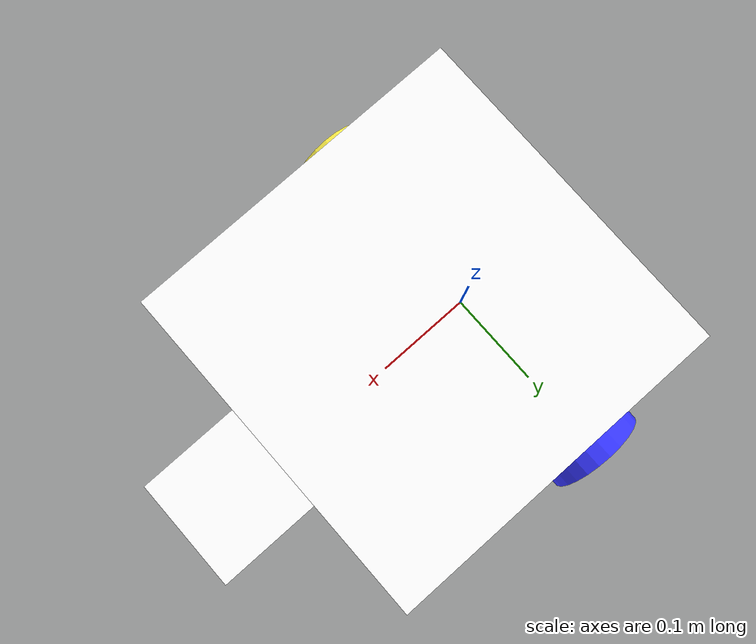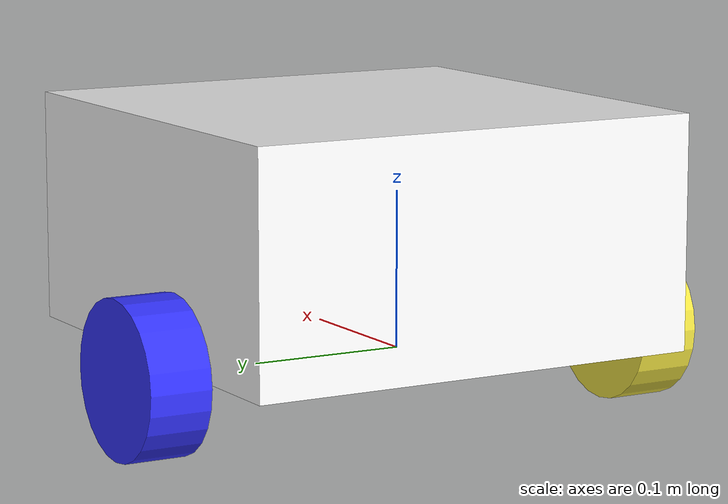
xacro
<?xml version="1.0"?>
<robot name="my_bot" xmlns:xacro="http://www.ros.org/wiki/xacro">

    <xacro:include filename="inertial_macros.xacro"/>

    <material name="white">
        <color rgba="1 1 1 1" />
    </material>

    <material name="orange">
        <color rgba="1 0.3 0.1 1"/>
    </material>

    <material name="blue">
        <color rgba="0.2 0.2 1 1"/>
    </material>

    <material name="black">
        <color rgba="0 0 0 1"/>
    </material>

    <!-- BASE LINK -->

    <link name="base_link">

    </link>

    <!-- CHASSIS LINK -->

    <joint name="chassis_joint" type="fixed">
        <parent link="base_link"/>
        <child link="chassis"/>
        <origin xyz="-0.1 0 0"/>
    </joint>

    <link name="chassis">
        <visual>
            <origin xyz="0.15 0 0.075"/>
            <geometry>
                <box size="0.3 0.3 0.15"/>
            </geometry>
            <material name="white"/>
        </visual>
        <collision>
            <origin xyz="0.15 0 0.075"/>
            <geometry>
                <box size="0.3 0.3 0.15"/>
            </geometry>
        </collision>
        <xacro:inertial_box mass="0.5" x="0.3" y="0.3" z="0.15">
            <origin xyz="0.15 0 0.075" rpy="0 0 0"/>
        </xacro:inertial_box>
    </link>

    <gazebo reference="chassis">
        <visual>
            <material>
                <!-- Values between 0.0 and 1.0 -->
                <ambient>1.0 1.0 1.0 1.0</ambient>
                <diffuse>1.0 1.0 1.0 1.0</diffuse>
                <specular>0.0 0.0 0.0 1.0</specular>
                <emissive>0.0 0.0 0.0 1.0</emissive>
            </material>
        </visual>
    </gazebo>

    <!-- LEFT WHEEL LINK -->

    <joint name="left_wheel_joint" type="continuous">
        <parent link="base_link"/>
        <child link="left_wheel"/>
        <origin xyz="0 0.175 0" rpy="-${pi/2} 0 0" />
        <axis xyz="0 0 1"/>
    </joint>

    <link name="left_wheel">
        <visual>
            <geometry>
                <cylinder radius="0.05" length="0.04"/>
            </geometry>
            <material name="blue"/>
        </visual>
        <collision>
            <geometry>
                <cylinder radius="0.05" length="0.04"/>
            </geometry>
        </collision>
        <xacro:inertial_cylinder mass="0.1" length="0.04" radius="0.05">
            <origin xyz="0 0 0" rpy="0 0 0"/>
        </xacro:inertial_cylinder>
        <mu>5.0</mu>

    </link>
<!-- ad -->
    <gazebo reference="left_wheel">
        <visual>
            <material>
                <!-- Values between 0.0 and 1.0 -->
                <ambient>0.0 0.0 1.0 1.0</ambient>
                <diffuse>0.0 0.0 1.0 1.0</diffuse>
                <specular>0.0 0.0 0.0 1.0</specular>
                <emissive>0.0 0.0 0.0 1.0</emissive>
            </material>
        </visual>
    </gazebo>

    <!-- RIGHT WHEEL LINK -->

    <joint name="right_wheel_joint" type="continuous">
        <parent link="base_link"/>
        <child link="right_wheel"/>
        <origin xyz="0 -0.175 0" rpy="${pi/2} 0 0" />
        <axis xyz="0 0 -1"/>
    </joint>

    <link name="right_wheel">
        <visual>
            <geometry>
                <cylinder radius="0.05" length="0.04"/>
            </geometry>
        </visual>
        <collision>
            <geometry>
                <cylinder radius="0.05" length="0.04"/>
            </geometry>
        </collision>
        <xacro:inertial_cylinder mass="0.1" length="0.04" radius="0.05">
            <origin xyz="0 0 0" rpy="0 0 0"/>
        </xacro:inertial_cylinder>

    </link>

    <gazebo reference="right_wheel">
        <visual>
            <material>
                <!-- Values between 0.0 and 1.0 -->
                <ambient>0.0 0.0 1.0 1.0</ambient>
                <diffuse>0.0 0.0 1.0 1.0</diffuse>
                <specular>0.0 0.0 0.0 1.0</specular>
                <emissive>0.0 0.0 0.0 1.0</emissive>
            </material>
        </visual>
    </gazebo>
    <!-- CASTER WHEEL LINK -->

    <joint name="caster_wheel_joint" type="fixed">
        <parent link="chassis"/>
        <child link="caster_wheel"/>
        <origin xyz="0.24 0 0"/>
    </joint>

    <link name="caster_wheel">
        <visual>
            <geometry>
                <sphere radius="0.05"/>
            </geometry>
            <material name="black"/>

        </visual>
        <collision>
            <geometry>
                <sphere radius="0.05"/>
            </geometry>
        </collision>
        <xacro:inertial_sphere mass="0.1" radius="0.05">
            <origin xyz="0 0 0" rpy="0 0 0"/>
        </xacro:inertial_sphere>
    </link>

    <gazebo reference="caster_wheel">
        <visual>
            <material>
                <!-- Values between 0.0 and 1.0 -->
                <ambient>0.0 0.0 0.0 1.0</ambient>
                <diffuse>0.0 0.0 0.0 1.0</diffuse>
                <specular>0.0 0.0 0.0 1.0</specular>
                <emissive>0.0 0.0 0.0 1.0</emissive>
            </material>
        </visual>

        <collision>
            <surface>
                <friction>
                    <ode>
                        <mu>0.0</mu>
                        <mu2>0.0</mu2>
                    </ode>
                </friction>
            </surface>
        </collision>
    </gazebo>

    <link name="bump_link">
        <visual>
            <origin xyz="0.35 0 0.075"/>
            <geometry>
                <box size="0.1 0.1 0.075"/>
            </geometry>
            <material name="white"/>
        </visual>
        <collision>
            <origin xyz="0.35 0 0.075"/>
            <geometry>
                <box size="0.1 0.1 0.075"/>
            </geometry>
        </collision>
        <xacro:inertial_box mass="0.02" x="0.1" y="0.1" z="0.075">
            <origin xyz="0.35 0 0.075" rpy="0 0 0"/>
        </xacro:inertial_box>
    </link>

    <joint name="bump_joint" type="fixed">
        <parent link="chassis"/>
        <child link="bump_link"/>
        <origin xyz="0 0 0" rpy="0 0 0"/>
    </joint>

    <gazebo reference="bump_link">
        <sensor name='my_contact' type='contact'>
            <plugin name="my_plugin" filename="libgazebo_ros_bumper.so"/>
               <contact>
                 <collision>base_link_fixed_joint_lump__bump_link_collision_1</collision>
               </contact>
             <update_rate> 5 </update_rate>
             </sensor>
       </gazebo>

</robot>
